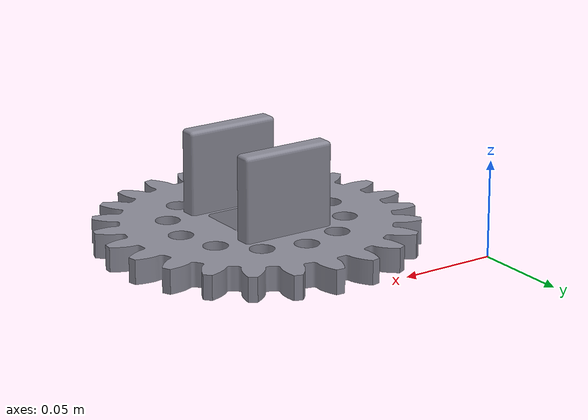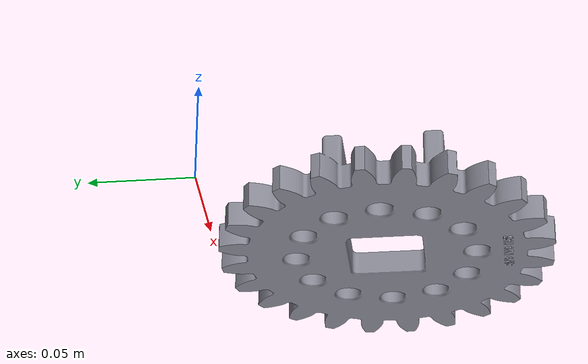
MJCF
<mujoco model="gear_big">
  <compiler angle="radian" autolimits="true" inertiafromgeom="true"
            meshdir="../assets/gearbox" texturedir="../assets/gearbox"/>

  <asset>
    <mesh name="gear_big" file="gear_big.stl" scale="1 1 1"/>
    <material name="metal_mat" rgba="0.55 0.55 0.60 1" specular="0.8" shininess="0.5" reflectance="0.3"/>
  </asset>

  <worldbody>
    <body name="gear_big">
      <freejoint name="gear_big_joint"/>
      <geom name="gear_big_visual" mesh="gear_big" type="mesh" material="metal_mat"
            contype="0" conaffinity="0"
            euler="3.14159 0 0" pos="0 0 0.0565"/>
    </body>
  </worldbody>
</mujoco>
